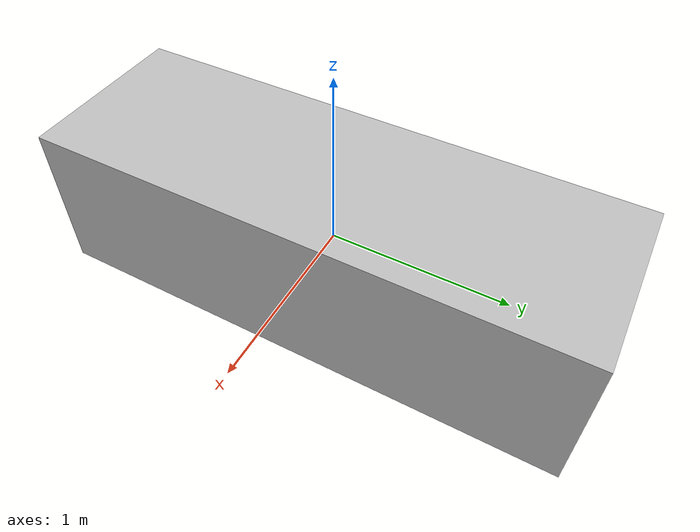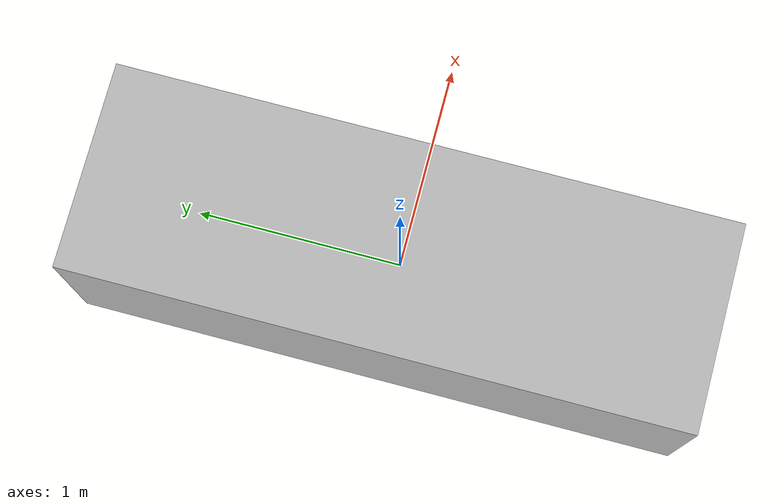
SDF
<?xml version='1.0'?>
<sdf version="1.4">
<model name="laminar_flow_box_1">
    <static>true</static>
    <link name="link">
      <pose>0 0 -0.005 0 0 0</pose>
      <collision name="collision">
        <geometry>
          <box>
            <size>1.0 3.0 0.9</size>
          </box>
        </geometry>
      </collision>
      <visual name="visual">
        <geometry>
          <box>
            <size>1.0 3.0 0.9</size>
          </box>
        </geometry>
      </visual>
    </link>
  </model>
</sdf>
